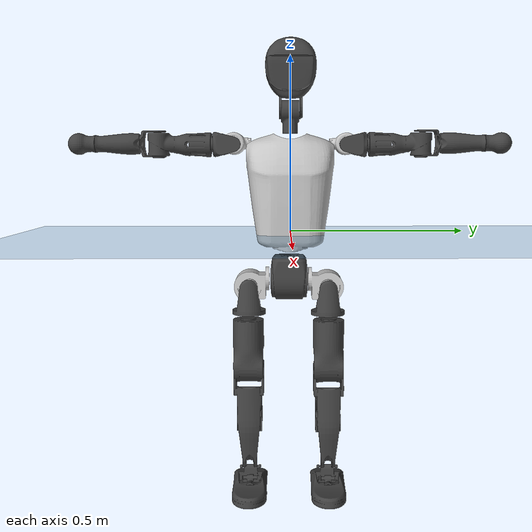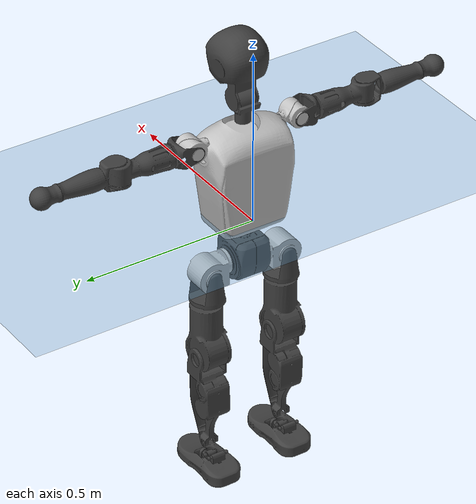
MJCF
<mujoco model="T1">
  <compiler angle="radian" assetdir="assets" balanceinertia="true" inertiafromgeom="false"/>

  <option timestep="0.005" density="1.2" viscosity="2e-05"/>

  <size nkey="1"/>

  <visual>
    <quality shadowsize="8192"/>
    <map shadowclip="0.5"/>
  </visual>

  <default>
    <default class="/">
      <joint armature="0.01" damping="0.01" frictionloss="0.1"/>
      <geom contype="0" conaffinity="0" group="1" solref="-1000 -80"/>
      <site size="0.01 0.005 0.005" group="5"/>
      <general forcelimited="true" biastype="affine" gainprm="25" biasprm="0 -25 -0.6"/>
      <default class="t1">
        <geom rgba="0.25 0.25 0.25 1"/>
        <default class="visual">
          <geom type="mesh" group="2"/>
        </default>
        <default class="collision">
          <geom group="3"/>
        </default>
        <default class="foot">
          <geom size="0.1115 0.05 0.015" type="box" condim="6" group="4" priority="1" solimp="0.015 1 0.015"/>
        </default>
        <default class="reward_collision_sphere">
          <geom group="5" rgba="1 0 0 1"/>
        </default>
      </default>
    </default>
  </default>

  <asset>
    <texture type="skybox" colorspace="auto" name="//unnamed_texture_0" builtin="gradient" rgb1="0.95 0.95 0.95" rgb2="0.95 0.95 0.95" width="100" height="600"/>
    <texture type="2d" colorspace="auto" name="texplane" builtin="checker" rgb1="0.345 0.575 0.748" rgb2="0.345 0.575 0.748" markrgb="1 1 1" width="512" height="512"/>
    <material name="MatPlane" class="/" texture="texplane" texuniform="true" texrepeat="2 2" specular="0.9"/>
    <mesh name="Trunk" class="/" file="Trunk.stl"/>
    <mesh name="H1" class="/" file="H1.stl"/>
    <mesh name="H2" class="/" file="H2.stl"/>
    <mesh name="AL1" class="/" file="AL1.stl"/>
    <mesh name="AL2" class="/" file="AL2.stl"/>
    <mesh name="AL3" class="/" file="AL3.stl"/>
    <mesh name="left_hand_link" class="/" file="left_hand_link.stl"/>
    <mesh name="AR1" class="/" file="AR1.stl"/>
    <mesh name="AR2" class="/" file="AR2.stl"/>
    <mesh name="AR3" class="/" file="AR3.stl"/>
    <mesh name="right_hand_link" class="/" file="right_hand_link.stl"/>
    <mesh name="Waist" class="/" file="Waist.stl"/>
    <mesh name="Hip_Pitch_Left" class="/" file="Hip_Pitch_Left.stl"/>
    <mesh name="Hip_Roll_Left" class="/" file="Hip_Roll_Left.stl"/>
    <mesh name="Hip_Yaw_Left" class="/" file="Hip_Yaw_Left.stl"/>
    <mesh name="Shank_Left" class="/" file="Shank_Left.stl"/>
    <mesh name="Ankle_Cross_Left" class="/" file="Ankle_Cross_Left.stl"/>
    <mesh name="left_foot_link" class="/" file="left_foot_link.stl"/>
    <mesh name="Hip_Pitch_Right" class="/" file="Hip_Pitch_Right.stl"/>
    <mesh name="Hip_Roll_Right" class="/" file="Hip_Roll_Right.stl"/>
    <mesh name="Hip_Yaw_Right" class="/" file="Hip_Yaw_Right.stl"/>
    <mesh name="Shank_Right" class="/" file="Shank_Right.stl"/>
    <mesh name="Ankle_Cross_Right" class="/" file="Ankle_Cross_Right.stl"/>
    <mesh name="right_foot_link" class="/" file="right_foot_link.stl"/>
  </asset>

  <worldbody>
    <geom name="floor" class="/" size="100 100 0.125" type="plane" group="0" material="MatPlane"/>
    <light name="toplight_shadow" class="/" pos="0 0 5" dir="0.0990148 0.0990148 -0.990148" type="directional" ambient="0.04 0.04 0.04" diffuse="0.55 0.55 0.55" specular="0.12 0.12 0.12"/>
    <light name="toplight_fill" class="/" pos="0 0 5" dir="0.0990148 0.0990148 -0.990148" type="directional" castshadow="false" ambient="0.04 0.04 0.04" diffuse="0.3 0.3 0.3" specular="0.08 0.08 0.08"/>
    <body name="trunk" childclass="t1" pos="-0.00049346 -0.000626765 -0.000416995" quat="0.999999 0.000525575 0.00095055 -0.000801672">
      <inertial pos="0.0419742 -0.00326009 0.121055" quat="0.999964 0.00115156 -0.00833569 0.000696257" mass="11.5518" diaginertia="0.0334238 0.0930141 0.110814"/>
      <joint name="//unnamed_joint_0" type="free" armature="0" damping="0" frictionloss="0"/>
      <geom name="//unnamed_geom_1" class="visual" rgba="0.76 0.76 0.76 1" mesh="Trunk"/>
      <geom name="//unnamed_geom_2" class="collision" size="0.0752401 0.10032 0.15048" pos="0.0488797 0 0.138562" type="box"/>
      <geom name="//unnamed_geom_3" class="reward_collision_sphere" size="0.115368" pos="0.0488797 0 0.115468"/>
      <geom name="//unnamed_geom_4" class="reward_collision_sphere" size="0.015048" pos="0.0488797 0.0884222 0"/>
      <geom name="//unnamed_geom_5" class="reward_collision_sphere" size="0.015048" pos="0.0488797 -0.0884222 0"/>
      <geom name="//unnamed_geom_6" class="reward_collision_sphere" size="0.015048" pos="0.0488797 0.111308 0.207843"/>
      <geom name="//unnamed_geom_7" class="reward_collision_sphere" size="0.015048" pos="0.0488797 -0.111308 0.207843"/>
      <site name="imu" pos="0.00920768 -0.00535039 -0.00926987" size="0.010032"/>
      <camera name="track" pos="0 -2.08052 0" quat="0.707107 0.707107 0 0" mode="trackcom"/>
      <camera name="ego_camera" pos="0.0993886 0 0.484967" quat="-0.5 -0.5 0.5 0.5"/>
      <body name="H1" pos="0.0496568 0.000188862 0.279752" quat="1 4.98684e-05 0.000102574 4.3057e-05">
        <inertial pos="-0.00259258 0.00106962 0.0665606" quat="0.75595 -0.0160014 0.00679083 0.654398" mass="0.444643" diaginertia="8.57946e-05 0.000262019 0.000291577"/>
        <joint name="AAHead_yaw" pos="0 0 0" axis="-0.00524092 0.0119574 0.999915" stiffness="0.00926629" range="-1.553 1.58687" armature="0.00935169" damping="0.00864736" frictionloss="0.101828"/>
        <geom name="//unnamed_geom_8" class="visual" mesh="H1"/>
        <body name="H2" pos="0.000619546 0.00248945 0.0720459" quat="1 -0.000216188 0.000417572 -0.000135168">
          <inertial pos="0.00642937 0.0034849 0.113475" quat="0.989026 0.102542 -0.0747616 -0.0756588" mass="0.633838" diaginertia="0.000752786 0.00231647 0.00353822"/>
          <joint name="Head_pitch" pos="0 0 0" axis="-2.51667e-06 -1 8.21618e-05" range="-1.22973 0.35268" armature="0.00866253" damping="0.00878785" frictionloss="0.113199"/>
          <geom name="//unnamed_geom_9" class="visual" mesh="H2"/>
          <geom name="//unnamed_geom_10" class="collision" size="0.0802561" pos="0.00814661 0 0.127015"/>
          <geom name="//unnamed_geom_11" class="reward_collision_sphere" size="0.0902881" pos="0.0162932 0 0.115468"/>
        </body>
      </body>
      <body name="AL1" pos="0.0486159 0.110096 0.250409" quat="1 1.14804e-05 0.000461432 -5.27399e-05">
        <inertial pos="-0.0033811 0.0463677 0.00114852" quat="0.504949 0.495525 -0.504115 0.495328" mass="0.539697" diaginertia="0.000496427 0.00158889 0.000591407"/>
        <joint name="Left_Shoulder_Pitch" pos="0 0 0" axis="0.0100339 0.999898 0.0101343" range="-3.29343 1.20916" armature="0.010543" damping="0.0080184" frictionloss="0.0997398"/>
        <geom name="//unnamed_geom_12" class="visual" rgba="0.76 0.76 0.76 1" mesh="AL1"/>
        <body name="AL2" pos="-0.000517553 0.0480424 -0.00205053" quat="1 6.41186e-05 6.31566e-05 4.49532e-05">
          <inertial pos="0.00395751 0.0387778 -0.00274657" quat="0.490825 0.519256 -0.484218 0.504971" mass="0.157879" diaginertia="0.000142111 0.000418856 0.000357049"/>
          <joint name="Left_Shoulder_Roll" pos="0 0 0" axis="-0.99999 0.00399693 -0.00219255" stiffness="0.000994883" range="-1.58206 1.72631" armature="0.0101676" damping="0.00196671" frictionloss="0.100951"/>
          <geom name="//unnamed_geom_13" class="visual" mesh="AL2"/>
          <body name="AL3" pos="0.00115589 0.0634522 0.000784647" quat="1 0.00025366 -0.000125378 0.000369934">
            <inertial pos="-0.00173467 0.0888917 -0.000322635" quat="0.703509 0.710569 -0.012712 0.00233521" mass="1.04333" diaginertia="0.00470474 0.0157873 0.00124858"/>
            <joint name="Left_Elbow_Pitch" pos="0 0 0" axis="-0.000194143 -1 -0.000597198" stiffness="0.000481404" range="-2.2585 2.28911" armature="0.010099" damping="0.0233294" frictionloss="0.113836"/>
            <geom name="//unnamed_geom_14" class="visual" mesh="AL3"/>
            <geom name="//unnamed_geom_15" class="collision" size="0.030096 0.0752401" pos="0 0.052013 0" quat="0.707105 0.707108 0 0" type="cylinder"/>
            <geom name="//unnamed_geom_16" class="reward_collision_sphere" size="0.0361153"/>
            <body name="left_hand_link" pos="0.00308587 0.155056 0.00260877" quat="1 -0.000280087 0.000385109 5.39253e-05">
              <inertial pos="0.00247257 0.112315 -0.00210501" quat="0.707498 0.706708 -0.00305836 0.00118209" mass="0.3296" diaginertia="0.00291331 0.0101851 0.000453853"/>
              <joint name="Left_Elbow_Yaw" pos="0 0 0" axis="-0.00448727 -0.000629878 0.99999" range="-2.4345 0.0231925" armature="0.0108194" damping="0.0144807" frictionloss="0.100055"/>
              <geom name="//unnamed_geom_17" class="visual" mesh="left_hand_link"/>
              <geom name="//unnamed_geom_18" class="collision" size="0.030096 0.0877801" pos="0 0.135234 0" quat="0.707105 0.707108 0 0" type="cylinder"/>
              <geom name="//unnamed_geom_19" class="reward_collision_sphere" size="0.0501601"/>
              <geom name="//unnamed_geom_20" class="reward_collision_sphere" size="0.0351121" pos="0 0.114429 0"/>
              <geom name="//unnamed_geom_21" class="reward_collision_sphere" size="0.0351121" pos="0 0.223656 0"/>
            </body>
          </body>
        </body>
      </body>
      <body name="AR1" pos="0.0470626 -0.110248 0.251616" quat="0.999999 -0.000536041 0.00152236 0.000294352">
        <inertial pos="-0.00105444 -0.0471043 8.34659e-05" quat="0.503367 0.494886 -0.505571 0.496093" mass="0.554427" diaginertia="0.000493523 0.00162543 0.00062538"/>
        <joint name="Right_Shoulder_Pitch" pos="0 0 0" axis="0.00158599 -0.999993 -0.00334931" stiffness="0.000221096" range="-1.19692 3.30555" armature="0.0103409" damping="0.00503984" frictionloss="0.099427"/>
        <geom name="//unnamed_geom_22" class="visual" rgba="0.76 0.76 0.76 1" mesh="AR1"/>
        <body name="AR2" pos="-0.000457978 -0.0486243 -0.00280597" quat="0.999999 -0.00043072 0.000887729 0.000948281">
          <inertial pos="0.0033813 -0.0399399 0.000980361" quat="0.51774 0.481388 -0.510025 0.489986" mass="0.157449" diaginertia="0.000140778 0.000415231 0.000355181"/>
          <joint name="Right_Shoulder_Roll" pos="0 0 0" axis="-0.999999 -0.000218937 0.00144174" range="-1.74479 1.56347" armature="0.00996238" damping="0" frictionloss="0.103235"/>
          <geom name="//unnamed_geom_23" class="visual" mesh="AR2"/>
          <body name="AR3" pos="-0.00226895 -0.0632234 -0.000616186" quat="0.999999 -4.15626e-06 0.000650729 0.00118217">
            <inertial pos="0.00222329 -0.0885109 0.000144382" quat="0.711046 0.703142 0.00188392 0.000864406" mass="1.0273" diaginertia="0.00470368 0.0160221 0.00129224"/>
            <joint name="Right_Elbow_Pitch" pos="0 0 0" axis="-0.00352564 0.999989 0.00308267" range="-2.26452 2.21907" armature="0.0104259" damping="0.00776984" frictionloss="0.103066"/>
            <geom name="//unnamed_geom_24" class="visual" mesh="AR3"/>
            <geom name="//unnamed_geom_25" class="collision" size="0.030096 0.0752401" pos="0 -0.052013 0" quat="0.707105 0.707108 0 0" type="cylinder"/>
            <geom name="//unnamed_geom_26" class="reward_collision_sphere" size="0.0361153"/>
            <body name="right_hand_link" pos="-0.00210054 -0.154384 0.00195379" quat="0.999999 0.00114409 0.000318351 0.000525427">
              <inertial pos="0.00220493 -0.114436 -0.00166348" quat="0.706515 0.707697 -0.000704372 -0.000461889" mass="0.316031" diaginertia="0.00274153 0.00939283 0.000441154"/>
              <joint name="Right_Elbow_Yaw" pos="0 0 0" axis="-0.00222433 0.00510709 0.999984" range="0.00689117 2.38529" armature="0.0102099" damping="0.0042602" frictionloss="0.0993455"/>
              <geom name="//unnamed_geom_27" class="visual" mesh="right_hand_link"/>
              <geom name="//unnamed_geom_28" class="collision" size="0.030096 0.0877801" pos="0 -0.135234 0" quat="0.707105 0.707108 0 0" type="cylinder"/>
              <geom name="//unnamed_geom_29" class="reward_collision_sphere" size="0.0501601"/>
              <geom name="//unnamed_geom_30" class="reward_collision_sphere" size="0.0351121" pos="0 -0.114429 0"/>
              <geom name="//unnamed_geom_31" class="reward_collision_sphere" size="0.0351121" pos="0 -0.223656 0"/>
            </body>
          </body>
        </body>
      </body>
      <body name="Waist" pos="0.049192 -0.00306984 -0.132435" quat="1 -0.000443611 6.33261e-05 -0.000282261">
        <inertial pos="0.000575427 0.00168375 0.00913136" quat="0.98219 0.00670457 -0.187766 0.0015876" mass="2.4821" diaginertia="0.00191305 0.00626562 0.00930368"/>
        <joint name="Waist" pos="0 0 0" axis="-0.0017154 -0.00294309 0.999994" range="-1.5756 1.57211" armature="0.00994042" damping="0.000544843" frictionloss="0.106153"/>
        <geom name="//unnamed_geom_32" class="visual" mesh="Waist"/>
        <body name="Hip_Pitch_Left" pos="0.00302075 0.110154 -0.000485824" quat="1 -0.000531588 8.92468e-05 8.12456e-05">
          <inertial pos="0.000834235 -0.00799689 -0.0236966" quat="0.974799 0.222472 0.0162181 0.0032832" mass="1.02484" diaginertia="0.000643823 0.00176786 0.00256323"/>
          <joint name="Left_Hip_Pitch" pos="0 0 0" axis="-0.00252528 0.999972 -0.00705658" stiffness="0.00464916" range="-1.82012 1.62392" armature="0.010486" damping="0" frictionloss="0.102682"/>
          <geom name="//unnamed_geom_33" class="visual" rgba="0.76 0.76 0.76 1" mesh="Hip_Pitch_Left"/>
          <body name="Hip_Roll_Left" pos="0.00298051 0.0012804 -0.0255712" quat="1 0.000137305 5.67244e-05 -0.000140875">
            <inertial pos="0.00184945 0.000105972 -0.0644972" quat="0.707348 -0.00414564 -0.00393698 0.706842" mass="0.396615" diaginertia="0.000660758 0.00184634 0.00105697"/>
            <joint name="Left_Hip_Roll" pos="0 0 0" axis="-0.999993 -0.00210798 0.00293934" range="-1.56913 0.256046" armature="0.00946579" damping="0.00711237" frictionloss="0.0982379"/>
            <geom name="//unnamed_geom_34" class="visual" mesh="Hip_Roll_Left"/>
            <geom name="//unnamed_geom_35" class="reward_collision_sphere" size="0.0551761"/>
            <body name="Hip_Yaw_Left" pos="0.000449496 0.00231691 -0.0928796" quat="1 -5.17168e-05 6.30897e-05 -7.95863e-05">
              <inertial pos="-0.00647506 6.81944e-05 -0.103678" quat="0.704019 -0.0295661 -0.0378928 0.708552" mass="2.14013" diaginertia="0.009227 0.0300086 0.00540041"/>
              <joint name="Left_Hip_Yaw" pos="0 0 0" axis="0.00204569 0.00073589 -0.999998" range="-0.98055 1.05673" armature="0.0106359" damping="0.000941444" frictionloss="0.098708"/>
              <geom name="//unnamed_geom_36" class="visual" mesh="Hip_Yaw_Left"/>
              <geom name="//unnamed_geom_37" class="collision" size="0.0501601 0.0802561" type="cylinder"/>
              <body name="Shank_Left" pos="-0.0110548 0.000917751 -0.157645" quat="1 0.000117418 5.8638e-05 -0.000239203">
                <inertial pos="-0.00432498 0.000251448 -0.146033" quat="0.997328 0.00562522 -0.0250543 0.0683905" mass="1.76389" diaginertia="0.0125605 0.0414886 0.0036728"/>
                <joint name="Left_Knee_Pitch" pos="0 0 0" axis="0.00161041 0.999995 0.00268349" stiffness="0.00801665" range="0.0224165 2.33572" armature="0.0102146" damping="0.0118055" frictionloss="0.104706"/>
                <geom name="//unnamed_geom_38" class="visual" mesh="Shank_Left"/>
                <geom name="//unnamed_geom_39" class="collision" size="0.0501601 0.0752401" pos="0 0 -0.138562" type="cylinder"/>
                <geom name="//unnamed_geom_40" class="reward_collision_sphere" size="0.0652081"/>
                <body name="Ankle_Cross_Left" pos="-6.28012e-05 0.000213105 -0.325901" quat="1 -0.000295258 -0.000452924 0.0002585">
                  <inertial pos="-0.00554339 0.00278616 -0.00902201" quat="0.442984 0.55128 0.551886 0.441902" mass="0.0714682" diaginertia="1.04661e-05 3.0078e-05 2.33369e-05"/>
                  <joint name="Left_Ankle_Pitch" pos="0 0 0" axis="0.00967683 0.999938 0.00549396" range="-0.903972 0.327839" armature="0.00870445" damping="0.00691636" frictionloss="0.105909"/>
                  <geom name="//unnamed_geom_41" class="visual" mesh="Ankle_Cross_Left"/>
                  <body name="left_foot_link" pos="0.000413472 0.00040119 -0.0118151" quat="0.999999 -0.00107615 -0.000372591 -0.000814374">
                    <inertial pos="-0.00281599 0.000557614 -0.0102072" quat="-0.0011693 0.624098 -0.00102242 0.781345" mass="0.677301" diaginertia="0.000978458 0.00285758 0.00460838"/>
                    <joint name="Left_Ankle_Roll" pos="0 0 0" axis="-0.999998 -0.0017006 -0.000701719" range="-0.494268 0.386781" armature="0.0105681" damping="0.0144958" frictionloss="0.0868313"/>
                    <geom name="//unnamed_geom_42" class="visual" mesh="left_foot_link"/>
                    <geom name="left_foot" class="foot" size="0.106909 0.0481435 0.0157188" pos="0.00814661 0 -0.0173202"/>
                    <geom name="//unnamed_geom_44" class="reward_collision_sphere" size="0.0521665" pos="0.00814661 0 -0.0173202"/>
                    <geom name="//unnamed_geom_45" class="reward_collision_sphere" size="0.030096" pos="0.0773928 -0.023926 -0.0173202"/>
                    <geom name="//unnamed_geom_46" class="reward_collision_sphere" size="0.030096" pos="-0.0570263 -0.023926 -0.0173202"/>
                    <site name="left_foot" class="foot" pos="0.00814661 0 -0.0173202" size="0.010032"/>
                  </body>
                </body>
              </body>
            </body>
          </body>
        </body>
        <body name="Hip_Pitch_Right" pos="-0.00246819 -0.113 0.000460696" quat="1 9.13629e-05 -0.000769404 -0.00052027">
          <inertial pos="0.000119962 0.00576619 -0.019283" quat="0.973339 -0.228989 0.0126075 -0.00397246" mass="1.02747" diaginertia="0.000665376 0.00181034 0.00267202"/>
          <joint name="Right_Hip_Pitch" pos="0 0 0" axis="0.00460406 -0.999989 0.00133726" stiffness="0.000531011" range="-1.56366 1.79536" armature="0.0110132" damping="0.00553532" frictionloss="0.100325"/>
          <geom name="//unnamed_geom_47" class="visual" rgba="0.76 0.76 0.76 1" mesh="Hip_Pitch_Right"/>
          <body name="Hip_Roll_Right" pos="0.00239541 -0.00268887 -0.0248888" quat="1 4.54571e-05 2.60101e-05 -0.000106696">
            <inertial pos="0.000433472 -0.000410711 -0.0599506" quat="0.705986 -0.00470544 -0.00513827 0.708192" mass="0.407367" diaginertia="0.000635498 0.00192595 0.00106786"/>
            <joint name="Right_Hip_Roll" pos="0 0 0" axis="-0.999981 -0.0051944 0.00322279" stiffness="0.0104339" range="-0.201111 1.51831" armature="0.0094201" damping="0" frictionloss="0.086728"/>
            <geom name="//unnamed_geom_48" class="visual" mesh="Hip_Roll_Right"/>
            <geom name="//unnamed_geom_49" class="reward_collision_sphere" size="0.0551761"/>
            <body name="Hip_Yaw_Right" pos="0.00274693 -0.00226965 -0.093154" quat="1 0.00034163 -0.000200449 0.000349979">
              <inertial pos="-0.00472602 -0.00218153 -0.101462" quat="0.71954 -0.0383161 -0.0253087 0.692931" mass="2.18872" diaginertia="0.00894243 0.0313205 0.00514968"/>
              <joint name="Right_Hip_Yaw" pos="0 0 0" axis="0.00891466 0.00523463 -0.999947" stiffness="0.00854074" range="-1.01858 0.987624" armature="0.0088923" damping="0.017425" frictionloss="0.100071"/>
              <geom name="//unnamed_geom_50" class="visual" mesh="Hip_Yaw_Right"/>
              <geom name="//unnamed_geom_51" class="collision" size="0.0501601 0.0802561" type="cylinder"/>
              <body name="Shank_Right" pos="-0.00863738 0.000789015 -0.155505" quat="1 0.000789751 -0.000107368 -0.000393398">
                <inertial pos="-0.00442318 -0.000150014 -0.142429" quat="0.999605 0.00470117 -0.0208207 -0.0182983" mass="1.80719" diaginertia="0.0130158 0.0427458 0.00411443"/>
                <joint name="Right_Knee_Pitch" pos="0 0 0" axis="0.0026113 -0.999989 -0.00397826" range="-2.33383 0.0306347" armature="0.010131" damping="0.0223553" frictionloss="0.0986913"/>
                <geom name="//unnamed_geom_52" class="visual" mesh="Shank_Right"/>
                <geom name="//unnamed_geom_53" class="collision" size="0.0501601 0.0752401" pos="0 0 -0.138562" type="cylinder"/>
                <geom name="//unnamed_geom_54" class="reward_collision_sphere" size="0.0652081"/>
                <body name="Ankle_Cross_Right" pos="0.00111824 0.000283403 -0.325212" quat="0.999999 0.000189545 0.000976038 -0.000708844">
                  <inertial pos="-0.00262409 0.00263941 -0.00994173" quat="0.443111 0.550893 0.551302 0.442985" mass="0.0732112" diaginertia="1.00522e-05 3.11581e-05 2.25865e-05"/>
                  <joint name="Right_Ankle_Pitch" pos="0 0 0" axis="-0.00708527 -0.99997 0.00318371" range="-0.400825 0.855579" armature="0.0100732" damping="0.0040427" frictionloss="0.104438"/>
                  <geom name="//unnamed_geom_55" class="visual" mesh="Ankle_Cross_Right"/>
                  <body name="right_foot_link" pos="0.00300073 -6.64697e-05 -0.0131868" quat="1 -0.000239563 -5.92651e-05 0.00013808">
                    <inertial pos="-0.000135637 0.00224506 -0.0105159" quat="-0.0015979 0.621325 0.00216606 0.783548" mass="0.735269" diaginertia="0.00101055 0.00299346 0.00459165"/>
                    <joint name="Right_Ankle_Roll" pos="0 0 0" axis="-0.999977 -0.00102995 -0.0067121" range="-0.41946 0.416957" armature="0.0102039" damping="0.00579266" frictionloss="0.0868333"/>
                    <geom name="//unnamed_geom_56" class="visual" mesh="right_foot_link"/>
                    <geom name="right_foot" class="foot" size="0.100154 0.0486809 0.0155322" pos="0.00814661 0 -0.0173202"/>
                    <geom name="//unnamed_geom_58" class="reward_collision_sphere" size="0.0401281"/>
                    <geom name="//unnamed_geom_59" class="reward_collision_sphere" size="0.030096" pos="0.00814661 0 -0.0173202"/>
                    <geom name="//unnamed_geom_60" class="reward_collision_sphere" size="0.030096" pos="0.0773928 0.023926 -0.0173202"/>
                    <geom name="//unnamed_geom_61" class="reward_collision_sphere" size="0.030096" pos="-0.0570263 0.023926 -0.0173202"/>
                    <site name="right_foot" class="foot" pos="0.00814661 0 -0.0173202" size="0.010032"/>
                  </body>
                </body>
              </body>
            </body>
          </body>
        </body>
      </body>
    </body>
  </worldbody>

  <contact>
    <pair class="/" geom1="floor" geom2="left_foot" name="//unnamed_contact_0"/>
    <pair class="/" geom1="floor" geom2="right_foot" name="//unnamed_contact_1"/>
  </contact>

  <actuator>
    <general name="AAHead_yaw" class="/" joint="AAHead_yaw" forcerange="-7.23492 7.23492" gainprm="23.2939" biasprm="0 -23.2939 -0.597555"/>
    <general name="Head_pitch" class="/" joint="Head_pitch" forcerange="-6.81951 6.81951" gainprm="23.2939" biasprm="0 -23.2939 -0.597555"/>
    <general name="Left_Shoulder_Pitch" class="/" joint="Left_Shoulder_Pitch" forcerange="-16.2633 16.2633" gainprm="23.2939" biasprm="0 -23.2939 -0.597555"/>
    <general name="Left_Shoulder_Roll" class="/" joint="Left_Shoulder_Roll" forcerange="-18.1103 18.1103" gainprm="23.2939" biasprm="0 -23.2939 -0.597555"/>
    <general name="Left_Elbow_Pitch" class="/" joint="Left_Elbow_Pitch" forcerange="-17.771 17.771" gainprm="23.2939" biasprm="0 -23.2939 -0.597555"/>
    <general name="Left_Elbow_Yaw" class="/" joint="Left_Elbow_Yaw" forcerange="-17.9908 17.9908" gainprm="23.2939" biasprm="0 -23.2939 -0.597555"/>
    <general name="Right_Shoulder_Pitch" class="/" joint="Right_Shoulder_Pitch" forcerange="-18.8237 18.8237" gainprm="23.2939" biasprm="0 -23.2939 -0.597555"/>
    <general name="Right_Shoulder_Roll" class="/" joint="Right_Shoulder_Roll" forcerange="-18.426 18.426" gainprm="23.2939" biasprm="0 -23.2939 -0.597555"/>
    <general name="Right_Elbow_Pitch" class="/" joint="Right_Elbow_Pitch" forcerange="-17.4679 17.4679" gainprm="23.2939" biasprm="0 -23.2939 -0.597555"/>
    <general name="Right_Elbow_Yaw" class="/" joint="Right_Elbow_Yaw" forcerange="-17.3462 17.3462" gainprm="23.2939" biasprm="0 -23.2939 -0.597555"/>
    <general name="Waist" class="/" joint="Waist" forcerange="-29.3966 29.3966" gainprm="23.2939" biasprm="0 -23.2939 -0.597555"/>
    <general name="Left_Hip_Pitch" class="/" joint="Left_Hip_Pitch" forcerange="-44.8367 44.8367" gainprm="23.2939" biasprm="0 -23.2939 -0.597555"/>
    <general name="Left_Hip_Roll" class="/" joint="Left_Hip_Roll" forcerange="-29.3266 29.3266" gainprm="23.2939" biasprm="0 -23.2939 -0.597555"/>
    <general name="Left_Hip_Yaw" class="/" joint="Left_Hip_Yaw" forcerange="-29.2611 29.2611" gainprm="23.2939" biasprm="0 -23.2939 -0.597555"/>
    <general name="Left_Knee_Pitch" class="/" joint="Left_Knee_Pitch" forcerange="-59.4464 59.4464" gainprm="23.2939" biasprm="0 -23.2939 -0.597555"/>
    <general name="Left_Ankle_Pitch" class="/" joint="Left_Ankle_Pitch" forcerange="-22.0958 22.0958" gainprm="23.2939" biasprm="0 -23.2939 -0.597555"/>
    <general name="Left_Ankle_Roll" class="/" joint="Left_Ankle_Roll" forcerange="-13.5633 13.5633" gainprm="23.2939" biasprm="0 -23.2939 -0.597555"/>
    <general name="Right_Hip_Pitch" class="/" joint="Right_Hip_Pitch" forcerange="-46.0548 46.0548" gainprm="23.2939" biasprm="0 -23.2939 -0.597555"/>
    <general name="Right_Hip_Roll" class="/" joint="Right_Hip_Roll" forcerange="-33.0297 33.0297" gainprm="23.2939" biasprm="0 -23.2939 -0.597555"/>
    <general name="Right_Hip_Yaw" class="/" joint="Right_Hip_Yaw" forcerange="-27.7177 27.7177" gainprm="23.2939" biasprm="0 -23.2939 -0.597555"/>
    <general name="Right_Knee_Pitch" class="/" joint="Right_Knee_Pitch" forcerange="-56.0804 56.0804" gainprm="23.2939" biasprm="0 -23.2939 -0.597555"/>
    <general name="Right_Ankle_Pitch" class="/" joint="Right_Ankle_Pitch" forcerange="-19.6658 19.6658" gainprm="23.2939" biasprm="0 -23.2939 -0.597555"/>
    <general name="Right_Ankle_Roll" class="/" joint="Right_Ankle_Roll" forcerange="-16.4462 16.4462" gainprm="23.2939" biasprm="0 -23.2939 -0.597555"/>
  </actuator>

  <sensor>
    <gyro site="imu" name="imu_angular_velocity"/>
    <velocimeter site="imu" name="imu_linear_velocity"/>
    <framelinvel objtype="site" objname="left_foot" name="left_foot_global_linear_velocity"/>
    <framelinvel objtype="site" objname="right_foot" name="right_foot_global_linear_velocity"/>
  </sensor>

  <keyframe>
    <key name="home" qpos="0 0 0.6385 1 0 0 0 0 0 0 1.4 0 -0.4 0 -1.4 0 0.4 0 -0.4 0 0 0.8 -0.4 0 0.4 0 0 -0.8 0.4 0"/>
  </keyframe>
</mujoco>
